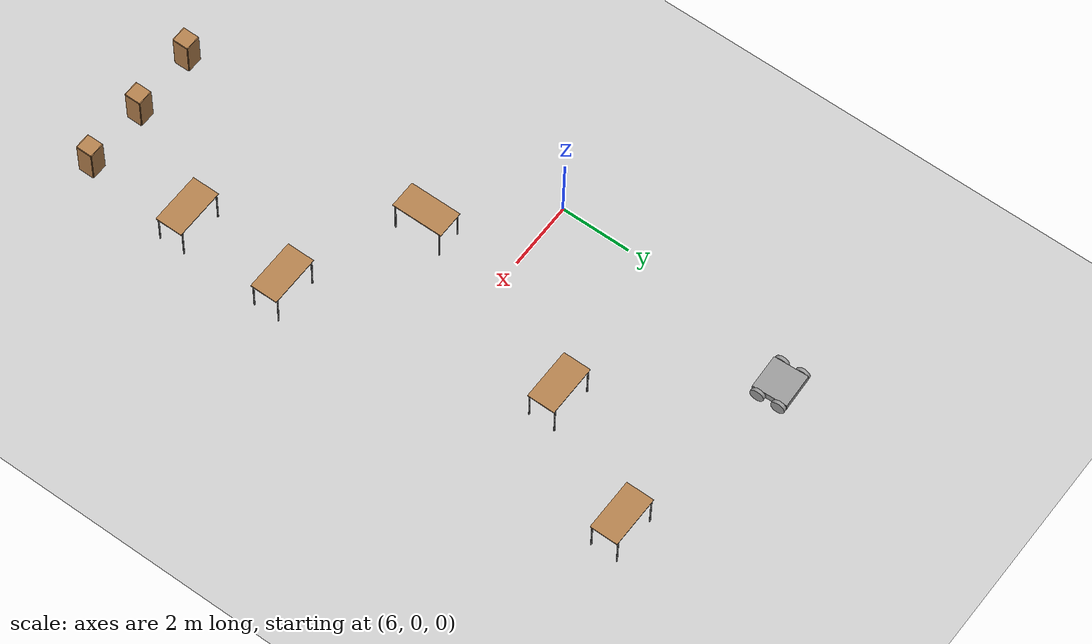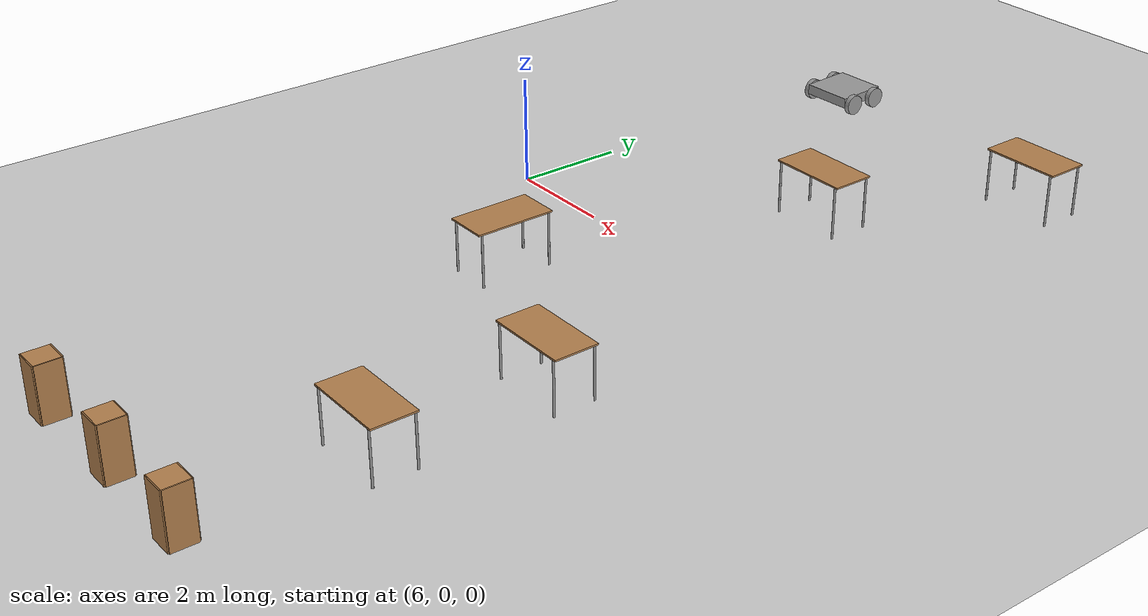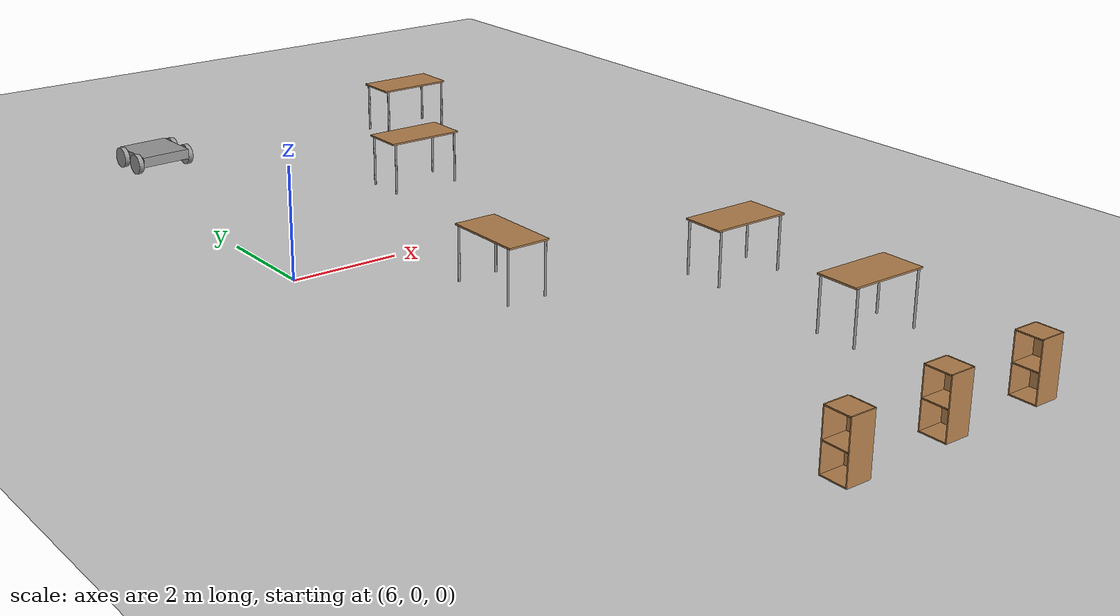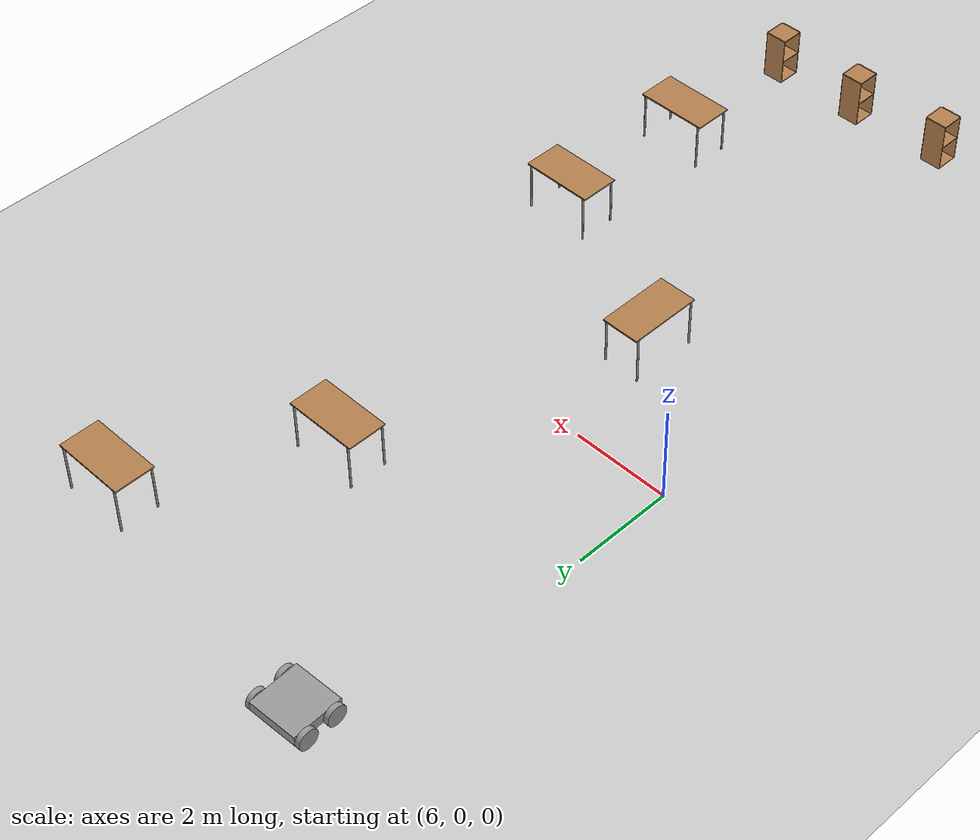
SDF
<sdf version="1.6">
 <world name="default">
  <model name="ground_plane">
   <static>1</static>
   <link name="link">
    <collision name="collision">
     <geometry><plane><normal>0 0 1</normal><size>100 100</size></plane></geometry>
     <surface>
      <contact><collide_bitmask>65535</collide_bitmask></contact>
      <friction><ode><mu>100</mu><mu2>50</mu2></ode></friction>
     </surface>
    </collision>
    <visual name="visual">
     <cast_shadows>0</cast_shadows>
     <geometry><plane><normal>0 0 1</normal><size>100 100</size></plane></geometry>
     <material>
      <script><uri>file://media/materials/scripts/gazebo.material</uri><name>Gazebo/Grey</name></script>
     </material>
    </visual>
   </link>
  </model>
  <model name="robot">
   <link name="link_0">
    <pose>0 0 0.048004 0 -0 0</pose>
    <inertial>
     <mass>1</mass>
     <inertia>
      <ixx>0.166667</ixx>
      <ixy>0</ixy>
      <ixz>0</ixz>
      <iyy>0.166667</iyy>
      <iyz>0</iyz>
      <izz>0.166667</izz>
     </inertia>
    </inertial>
    <visual name="visual">
     <geometry><box><size>1 1 0.2</size></box></geometry>
     <material>
      <lighting>1</lighting>
      <script><uri>file://media/materials/scripts/gazebo.material</uri><name>Gazebo/Grey</name></script>
      <shader type="pixel"><normal_map>__default__</normal_map></shader>
      <ambient>0.3 0.3 0.3 1</ambient>
      <diffuse>0.7 0.7 0.7 1</diffuse>
      <specular>0.01 0.01 0.01 1</specular>
      <emissive>0 0 0 1</emissive>
     </material>
    </visual>
    <collision name="collision">
     <geometry><box><size>1 1 0.2</size></box></geometry>
     <surface>
      <friction>
       <ode><mu>1</mu><mu2>1</mu2><fdir1>0 0 0</fdir1><slip1>0</slip1><slip2>0</slip2></ode>
       <torsional>
        <coefficient>1</coefficient>
        <patch_radius>0</patch_radius>
        <surface_radius>0</surface_radius>
        <use_patch_radius>1</use_patch_radius>
        <ode><slip>0</slip></ode>
       </torsional>
      </friction>
      <bounce><restitution_coefficient>0</restitution_coefficient><threshold>1e+06</threshold></bounce>
      <contact>
       <collide_without_contact>0</collide_without_contact>
       <collide_without_contact_bitmask>1</collide_without_contact_bitmask>
       <collide_bitmask>1</collide_bitmask>
       <ode>
        <soft_cfm>0</soft_cfm>
        <soft_erp>0.2</soft_erp>
        <kp>1e+13</kp>
        <kd>1</kd>
        <max_vel>0.01</max_vel>
        <min_depth>0</min_depth>
       </ode>
       <bullet>
        <split_impulse>1</split_impulse>
        <split_impulse_penetration_threshold>-0.01</split_impulse_penetration_threshold>
        <soft_cfm>0</soft_cfm>
        <soft_erp>0.2</soft_erp>
        <kp>1e+13</kp>
        <kd>1</kd>
       </bullet>
      </contact>
     </surface>
    </collision>
   </link>
   <link name="link_1_clone_1_clone">
    <pose>0.3 0.550019 -0.012001 1.5707 -0 0</pose>
    <inertial>
     <mass>1</mass>
     <inertia><ixx>0.145833</ixx><ixy>0</ixy><ixz>0</ixz><iyy>0.145833</iyy><iyz>0</iyz><izz>0.125</izz></inertia>
    </inertial>
    <visual name="visual">
     <geometry><cylinder><radius>0.2</radius><length>0.1</length></cylinder></geometry>
     <material>
      <lighting>1</lighting>
      <script><uri>file://media/materials/scripts/gazebo.material</uri><name>Gazebo/Grey</name></script>
      <shader type="pixel"><normal_map>__default__</normal_map></shader>
      <ambient>0.3 0.3 0.3 1</ambient>
      <diffuse>0.7 0.7 0.7 1</diffuse>
      <specular>0.01 0.01 0.01 1</specular>
      <emissive>0 0 0 1</emissive>
     </material>
    </visual>
    <collision name="collision">
     <geometry><cylinder><radius>0.2</radius><length>0.1</length></cylinder></geometry>
     <surface>
      <friction>
       <ode><mu>1</mu><mu2>1</mu2><fdir1>0 0 0</fdir1><slip1>0</slip1><slip2>0</slip2></ode>
       <torsional>
        <coefficient>1</coefficient>
        <patch_radius>0</patch_radius>
        <surface_radius>0</surface_radius>
        <use_patch_radius>1</use_patch_radius>
        <ode><slip>0</slip></ode>
       </torsional>
      </friction>
      <bounce><restitution_coefficient>0</restitution_coefficient><threshold>1e+06</threshold></bounce>
      <contact>
       <collide_without_contact>0</collide_without_contact>
       <collide_without_contact_bitmask>1</collide_without_contact_bitmask>
       <collide_bitmask>1</collide_bitmask>
       <ode>
        <soft_cfm>0</soft_cfm>
        <soft_erp>0.2</soft_erp>
        <kp>1e+13</kp>
        <kd>1</kd>
        <max_vel>0.01</max_vel>
        <min_depth>0</min_depth>
       </ode>
       <bullet>
        <split_impulse>1</split_impulse>
        <split_impulse_penetration_threshold>-0.01</split_impulse_penetration_threshold>
        <soft_cfm>0</soft_cfm>
        <soft_erp>0.2</soft_erp>
        <kp>1e+13</kp>
        <kd>1</kd>
       </bullet>
      </contact>
     </surface>
    </collision>
   </link>
   <link name="link_1_clone_1_clone_clone">
    <pose>-0.3 0.550019 -0.012001 1.5707 -0 0</pose>
    <inertial>
     <mass>1</mass>
     <inertia><ixx>0.145833</ixx><ixy>0</ixy><ixz>0</ixz><iyy>0.145833</iyy><iyz>0</iyz><izz>0.125</izz></inertia>
    </inertial>
    <visual name="visual">
     <geometry><cylinder><radius>0.2</radius><length>0.1</length></cylinder></geometry>
     <material>
      <lighting>1</lighting>
      <script><uri>file://media/materials/scripts/gazebo.material</uri><name>Gazebo/Grey</name></script>
      <shader type="pixel"><normal_map>__default__</normal_map></shader>
      <ambient>0.3 0.3 0.3 1</ambient>
      <diffuse>0.7 0.7 0.7 1</diffuse>
      <specular>0.01 0.01 0.01 1</specular>
      <emissive>0 0 0 1</emissive>
     </material>
    </visual>
    <collision name="collision">
     <geometry><cylinder><radius>0.2</radius><length>0.1</length></cylinder></geometry>
     <surface>
      <friction>
       <ode><mu>1</mu><mu2>1</mu2><fdir1>0 0 0</fdir1><slip1>0</slip1><slip2>0</slip2></ode>
       <torsional>
        <coefficient>1</coefficient>
        <patch_radius>0</patch_radius>
        <surface_radius>0</surface_radius>
        <use_patch_radius>1</use_patch_radius>
        <ode><slip>0</slip></ode>
       </torsional>
      </friction>
      <bounce><restitution_coefficient>0</restitution_coefficient><threshold>1e+06</threshold></bounce>
      <contact>
       <collide_without_contact>0</collide_without_contact>
       <collide_without_contact_bitmask>1</collide_without_contact_bitmask>
       <collide_bitmask>1</collide_bitmask>
       <ode>
        <soft_cfm>0</soft_cfm>
        <soft_erp>0.2</soft_erp>
        <kp>1e+13</kp>
        <kd>1</kd>
        <max_vel>0.01</max_vel>
        <min_depth>0</min_depth>
       </ode>
       <bullet>
        <split_impulse>1</split_impulse>
        <split_impulse_penetration_threshold>-0.01</split_impulse_penetration_threshold>
        <soft_cfm>0</soft_cfm>
        <soft_erp>0.2</soft_erp>
        <kp>1e+13</kp>
        <kd>1</kd>
       </bullet>
      </contact>
     </surface>
    </collision>
   </link>
   <link name="link_1_clone_1_clone_clone_clone">
    <pose>0.3 -0.550019 -0.012001 1.5707 -0 0</pose>
    <inertial>
     <mass>1</mass>
     <inertia><ixx>0.145833</ixx><ixy>0</ixy><ixz>0</ixz><iyy>0.145833</iyy><iyz>0</iyz><izz>0.125</izz></inertia>
    </inertial>
    <visual name="visual">
     <geometry><cylinder><radius>0.2</radius><length>0.1</length></cylinder></geometry>
     <material>
      <lighting>1</lighting>
      <script><uri>file://media/materials/scripts/gazebo.material</uri><name>Gazebo/Grey</name></script>
      <shader type="pixel"><normal_map>__default__</normal_map></shader>
      <ambient>0.3 0.3 0.3 1</ambient>
      <diffuse>0.7 0.7 0.7 1</diffuse>
      <specular>0.01 0.01 0.01 1</specular>
      <emissive>0 0 0 1</emissive>
     </material>
    </visual>
    <collision name="collision">
     <geometry><cylinder><radius>0.2</radius><length>0.1</length></cylinder></geometry>
     <surface>
      <friction>
       <ode><mu>1</mu><mu2>1</mu2><fdir1>0 0 0</fdir1><slip1>0</slip1><slip2>0</slip2></ode>
       <torsional>
        <coefficient>1</coefficient>
        <patch_radius>0</patch_radius>
        <surface_radius>0</surface_radius>
        <use_patch_radius>1</use_patch_radius>
        <ode><slip>0</slip></ode>
       </torsional>
      </friction>
      <bounce><restitution_coefficient>0</restitution_coefficient><threshold>1e+06</threshold></bounce>
      <contact>
       <collide_without_contact>0</collide_without_contact>
       <collide_without_contact_bitmask>1</collide_without_contact_bitmask>
       <collide_bitmask>1</collide_bitmask>
       <ode>
        <soft_cfm>0</soft_cfm>
        <soft_erp>0.2</soft_erp>
        <kp>1e+13</kp>
        <kd>1</kd>
        <max_vel>0.01</max_vel>
        <min_depth>0</min_depth>
       </ode>
       <bullet>
        <split_impulse>1</split_impulse>
        <split_impulse_penetration_threshold>-0.01</split_impulse_penetration_threshold>
        <soft_cfm>0</soft_cfm>
        <soft_erp>0.2</soft_erp>
        <kp>1e+13</kp>
        <kd>1</kd>
       </bullet>
      </contact>
     </surface>
    </collision>
   </link>
   <link name="link_1_clone_1_clone_clone_clone_0">
    <pose>-0.3 -0.550019 -0.012001 1.5707 -0 0</pose>
    <inertial>
     <mass>1</mass>
     <inertia><ixx>0.145833</ixx><ixy>0</ixy><ixz>0</ixz><iyy>0.145833</iyy><iyz>0</iyz><izz>0.125</izz></inertia>
    </inertial>
    <visual name="visual">
     <geometry><cylinder><radius>0.2</radius><length>0.1</length></cylinder></geometry>
     <material>
      <lighting>1</lighting>
      <script><uri>file://media/materials/scripts/gazebo.material</uri><name>Gazebo/Grey</name></script>
      <shader type="pixel"><normal_map>__default__</normal_map></shader>
      <ambient>0.3 0.3 0.3 1</ambient>
      <diffuse>0.7 0.7 0.7 1</diffuse>
      <specular>0.01 0.01 0.01 1</specular>
      <emissive>0 0 0 1</emissive>
     </material>
    </visual>
    <collision name="collision">
     <geometry><cylinder><radius>0.2</radius><length>0.1</length></cylinder></geometry>
     <surface>
      <friction>
       <ode><mu>1</mu><mu2>1</mu2><fdir1>0 0 0</fdir1><slip1>0</slip1><slip2>0</slip2></ode>
       <torsional>
        <coefficient>1</coefficient>
        <patch_radius>0</patch_radius>
        <surface_radius>0</surface_radius>
        <use_patch_radius>1</use_patch_radius>
        <ode><slip>0</slip></ode>
       </torsional>
      </friction>
      <bounce><restitution_coefficient>0</restitution_coefficient><threshold>1e+06</threshold></bounce>
      <contact>
       <collide_without_contact>0</collide_without_contact>
       <collide_without_contact_bitmask>1</collide_without_contact_bitmask>
       <collide_bitmask>1</collide_bitmask>
       <ode>
        <soft_cfm>0</soft_cfm>
        <soft_erp>0.2</soft_erp>
        <kp>1e+13</kp>
        <kd>1</kd>
        <max_vel>0.01</max_vel>
        <min_depth>0</min_depth>
       </ode>
       <bullet>
        <split_impulse>1</split_impulse>
        <split_impulse_penetration_threshold>-0.01</split_impulse_penetration_threshold>
        <soft_cfm>0</soft_cfm>
        <soft_erp>0.2</soft_erp>
        <kp>1e+13</kp>
        <kd>1</kd>
       </bullet>
      </contact>
     </surface>
    </collision>
   </link>
   <joint name="link_0_JOINT_4" type="revolute">
    <parent>link_0</parent>
    <child>link_1_clone_1_clone</child>
    <axis>
     <xyz>0 0 1</xyz>
     <use_parent_model_frame>0</use_parent_model_frame>
     <limit>
      <lower>-1.79769e+308</lower>
      <upper>1.79769e+308</upper>
      <effort>-1</effort>
      <velocity>-1</velocity>
     </limit>
     <dynamics>
      <spring_reference>0</spring_reference>
      <spring_stiffness>0</spring_stiffness>
      <damping>0</damping>
     </dynamics>
    </axis>
    <physics>
     <ode><limit><cfm>0</cfm><erp>0.2</erp></limit><suspension><cfm>0</cfm><erp>0.2</erp></suspension></ode>
    </physics>
   </joint>
   <joint name="link_0_JOINT_5" type="revolute">
    <parent>link_0</parent>
    <child>link_1_clone_1_clone_clone</child>
    <axis>
     <xyz>0 0 1</xyz>
     <use_parent_model_frame>0</use_parent_model_frame>
     <limit>
      <lower>-1.79769e+308</lower>
      <upper>1.79769e+308</upper>
      <effort>-1</effort>
      <velocity>-1</velocity>
     </limit>
     <dynamics>
      <spring_reference>0</spring_reference>
      <spring_stiffness>0</spring_stiffness>
      <damping>0</damping>
     </dynamics>
    </axis>
    <physics>
     <ode><limit><cfm>0</cfm><erp>0.2</erp></limit><suspension><cfm>0</cfm><erp>0.2</erp></suspension></ode>
    </physics>
   </joint>
   <joint name="link_0_JOINT_6" type="revolute">
    <parent>link_0</parent>
    <child>link_1_clone_1_clone_clone_clone_0</child>
    <axis>
     <xyz>0 0 1</xyz>
     <use_parent_model_frame>0</use_parent_model_frame>
     <limit>
      <lower>-1.79769e+308</lower>
      <upper>1.79769e+308</upper>
      <effort>-1</effort>
      <velocity>-1</velocity>
     </limit>
     <dynamics>
      <spring_reference>0</spring_reference>
      <spring_stiffness>0</spring_stiffness>
      <damping>0</damping>
     </dynamics>
    </axis>
    <physics>
     <ode><limit><cfm>0</cfm><erp>0.2</erp></limit><suspension><cfm>0</cfm><erp>0.2</erp></suspension></ode>
    </physics>
   </joint>
   <joint name="link_0_JOINT_7" type="revolute">
    <parent>link_0</parent>
    <child>link_1_clone_1_clone_clone_clone</child>
    <axis>
     <xyz>0 0 1</xyz>
     <use_parent_model_frame>0</use_parent_model_frame>
     <limit>
      <lower>-1.79769e+308</lower>
      <upper>1.79769e+308</upper>
      <effort>-1</effort>
      <velocity>-1</velocity>
     </limit>
     <dynamics>
      <spring_reference>0</spring_reference>
      <spring_stiffness>0</spring_stiffness>
      <damping>0</damping>
     </dynamics>
    </axis>
    <physics>
     <ode><limit><cfm>0</cfm><erp>0.2</erp></limit><suspension><cfm>0</cfm><erp>0.2</erp></suspension></ode>
    </physics>
   </joint>
   <static>0</static>
   <pose>6.96794 7.26627 0.212002 1e-06 -1e-05 1.61507</pose>
  </model>
  <model name="cabinet">
   <static>1</static>
   <link name="cabinet_bottom_plate">
    <inertial>
     <pose>0 0 -1 0 -0 0</pose>
     <inertia><ixx>2.05</ixx><ixy>0</ixy><ixz>0</ixz><iyy>2.05</iyy><iyz>0</iyz><izz>2.05</izz></inertia>
     <mass>25</mass>
    </inertial>
    <collision name="cabinet_bottom_plate_geom">
     <pose>0 0 0.01 0 -0 0</pose>
     <geometry><box><size>0.45 0.45 0.02</size></box></geometry>
    </collision>
    <visual name="cabinet_bottom_plate_geom_visual">
     <pose>0 0 0.01 0 -0 0</pose>
     <geometry><box><size>0.45 0.45 0.02</size></box></geometry>
     <material>
      <script><uri>file://media/materials/scripts/gazebo.material</uri><name>Gazebo/Wood</name></script>
     </material>
    </visual>
    <collision name="cabinet_bottom_plate_geom_cabinet_back_plate">
     <pose>0.235 0 0.51 0 -0 0</pose>
     <geometry><box><size>0.02 0.45 1.02</size></box></geometry>
    </collision>
    <visual name="cabinet_bottom_plate_geom_cabinet_back_plate_visual">
     <pose>0.235 0 0.51 0 -0 0</pose>
     <geometry><box><size>0.02 0.45 1.02</size></box></geometry>
     <material>
      <script><uri>file://media/materials/scripts/gazebo.material</uri><name>Gazebo/Wood</name></script>
     </material>
    </visual>
    <collision name="cabinet_bottom_plate_geom_cabinet_left_plate">
     <pose>0 0.235 0.51 0 -0 0</pose>
     <geometry><box><size>0.45 0.02 1.02</size></box></geometry>
    </collision>
    <visual name="cabinet_bottom_plate_geom_cabinet_left_plate_visual">
     <pose>0 0.235 0.51 0 -0 0</pose>
     <geometry><box><size>0.45 0.02 1.02</size></box></geometry>
     <material>
      <script><uri>file://media/materials/scripts/gazebo.material</uri><name>Gazebo/Wood</name></script>
     </material>
    </visual>
    <collision name="cabinet_bottom_plate_geom_cabinet_middle_plate">
     <pose>0 0 0.51 0 -0 0</pose>
     <geometry><box><size>0.45 0.45 0.02</size></box></geometry>
    </collision>
    <visual name="cabinet_bottom_plate_geom_cabinet_middle_plate_visual">
     <pose>0 0 0.51 0 -0 0</pose>
     <geometry><box><size>0.45 0.45 0.02</size></box></geometry>
     <material>
      <script><uri>file://media/materials/scripts/gazebo.material</uri><name>Gazebo/Wood</name></script>
     </material>
    </visual>
    <collision name="cabinet_bottom_plate_geom_cabinet_right_plate">
     <pose>0 -0.235 0.51 0 -0 0</pose>
     <geometry><box><size>0.45 0.02 1.02</size></box></geometry>
    </collision>
    <visual name="cabinet_bottom_plate_geom_cabinet_right_plate_visual">
     <pose>0 -0.235 0.51 0 -0 0</pose>
     <geometry><box><size>0.45 0.02 1.02</size></box></geometry>
     <material>
      <script><uri>file://media/materials/scripts/gazebo.material</uri><name>Gazebo/Wood</name></script>
     </material>
    </visual>
    <collision name="cabinet_bottom_plate_geom_cabinet_top_plate">
     <pose>0 0 1.01 0 -0 0</pose>
     <geometry><box><size>0.45 0.45 0.02</size></box></geometry>
    </collision>
    <visual name="cabinet_bottom_plate_geom_cabinet_top_plate_visual">
     <pose>0 0 1.01 0 -0 0</pose>
     <geometry><box><size>0.45 0.45 0.02</size></box></geometry>
     <material>
      <script><uri>file://media/materials/scripts/gazebo.material</uri><name>Gazebo/Wood</name></script>
     </material>
    </visual>
   </link>
   <pose>8.20144 -10.3116 0 0 -0 0</pose>
  </model>
  <model name="cabinet_0">
   <static>1</static>
   <link name="cabinet_bottom_plate">
    <inertial>
     <pose>0 0 -1 0 -0 0</pose>
     <inertia><ixx>2.05</ixx><ixy>0</ixy><ixz>0</ixz><iyy>2.05</iyy><iyz>0</iyz><izz>2.05</izz></inertia>
     <mass>25</mass>
    </inertial>
    <collision name="cabinet_bottom_plate_geom">
     <pose>0 0 0.01 0 -0 0</pose>
     <geometry><box><size>0.45 0.45 0.02</size></box></geometry>
    </collision>
    <visual name="cabinet_bottom_plate_geom_visual">
     <pose>0 0 0.01 0 -0 0</pose>
     <geometry><box><size>0.45 0.45 0.02</size></box></geometry>
     <material>
      <script><uri>file://media/materials/scripts/gazebo.material</uri><name>Gazebo/Wood</name></script>
     </material>
    </visual>
    <collision name="cabinet_bottom_plate_geom_cabinet_back_plate">
     <pose>0.235 0 0.51 0 -0 0</pose>
     <geometry><box><size>0.02 0.45 1.02</size></box></geometry>
    </collision>
    <visual name="cabinet_bottom_plate_geom_cabinet_back_plate_visual">
     <pose>0.235 0 0.51 0 -0 0</pose>
     <geometry><box><size>0.02 0.45 1.02</size></box></geometry>
     <material>
      <script><uri>file://media/materials/scripts/gazebo.material</uri><name>Gazebo/Wood</name></script>
     </material>
    </visual>
    <collision name="cabinet_bottom_plate_geom_cabinet_left_plate">
     <pose>0 0.235 0.51 0 -0 0</pose>
     <geometry><box><size>0.45 0.02 1.02</size></box></geometry>
    </collision>
    <visual name="cabinet_bottom_plate_geom_cabinet_left_plate_visual">
     <pose>0 0.235 0.51 0 -0 0</pose>
     <geometry><box><size>0.45 0.02 1.02</size></box></geometry>
     <material>
      <script><uri>file://media/materials/scripts/gazebo.material</uri><name>Gazebo/Wood</name></script>
     </material>
    </visual>
    <collision name="cabinet_bottom_plate_geom_cabinet_middle_plate">
     <pose>0 0 0.51 0 -0 0</pose>
     <geometry><box><size>0.45 0.45 0.02</size></box></geometry>
    </collision>
    <visual name="cabinet_bottom_plate_geom_cabinet_middle_plate_visual">
     <pose>0 0 0.51 0 -0 0</pose>
     <geometry><box><size>0.45 0.45 0.02</size></box></geometry>
     <material>
      <script><uri>file://media/materials/scripts/gazebo.material</uri><name>Gazebo/Wood</name></script>
     </material>
    </visual>
    <collision name="cabinet_bottom_plate_geom_cabinet_right_plate">
     <pose>0 -0.235 0.51 0 -0 0</pose>
     <geometry><box><size>0.45 0.02 1.02</size></box></geometry>
    </collision>
    <visual name="cabinet_bottom_plate_geom_cabinet_right_plate_visual">
     <pose>0 -0.235 0.51 0 -0 0</pose>
     <geometry><box><size>0.45 0.02 1.02</size></box></geometry>
     <material>
      <script><uri>file://media/materials/scripts/gazebo.material</uri><name>Gazebo/Wood</name></script>
     </material>
    </visual>
    <collision name="cabinet_bottom_plate_geom_cabinet_top_plate">
     <pose>0 0 1.01 0 -0 0</pose>
     <geometry><box><size>0.45 0.45 0.02</size></box></geometry>
    </collision>
    <visual name="cabinet_bottom_plate_geom_cabinet_top_plate_visual">
     <pose>0 0 1.01 0 -0 0</pose>
     <geometry><box><size>0.45 0.45 0.02</size></box></geometry>
     <material>
      <script><uri>file://media/materials/scripts/gazebo.material</uri><name>Gazebo/Wood</name></script>
     </material>
    </visual>
   </link>
   <pose>10.2141 -10.2419 0 0 -0 0</pose>
  </model>
  <model name="cabinet_1">
   <static>1</static>
   <link name="cabinet_bottom_plate">
    <inertial>
     <pose>0 0 -1 0 -0 0</pose>
     <inertia><ixx>2.05</ixx><ixy>0</ixy><ixz>0</ixz><iyy>2.05</iyy><iyz>0</iyz><izz>2.05</izz></inertia>
     <mass>25</mass>
    </inertial>
    <collision name="cabinet_bottom_plate_geom">
     <pose>0 0 0.01 0 -0 0</pose>
     <geometry><box><size>0.45 0.45 0.02</size></box></geometry>
    </collision>
    <visual name="cabinet_bottom_plate_geom_visual">
     <pose>0 0 0.01 0 -0 0</pose>
     <geometry><box><size>0.45 0.45 0.02</size></box></geometry>
     <material>
      <script><uri>file://media/materials/scripts/gazebo.material</uri><name>Gazebo/Wood</name></script>
     </material>
    </visual>
    <collision name="cabinet_bottom_plate_geom_cabinet_back_plate">
     <pose>0.235 0 0.51 0 -0 0</pose>
     <geometry><box><size>0.02 0.45 1.02</size></box></geometry>
    </collision>
    <visual name="cabinet_bottom_plate_geom_cabinet_back_plate_visual">
     <pose>0.235 0 0.51 0 -0 0</pose>
     <geometry><box><size>0.02 0.45 1.02</size></box></geometry>
     <material>
      <script><uri>file://media/materials/scripts/gazebo.material</uri><name>Gazebo/Wood</name></script>
     </material>
    </visual>
    <collision name="cabinet_bottom_plate_geom_cabinet_left_plate">
     <pose>0 0.235 0.51 0 -0 0</pose>
     <geometry><box><size>0.45 0.02 1.02</size></box></geometry>
    </collision>
    <visual name="cabinet_bottom_plate_geom_cabinet_left_plate_visual">
     <pose>0 0.235 0.51 0 -0 0</pose>
     <geometry><box><size>0.45 0.02 1.02</size></box></geometry>
     <material>
      <script><uri>file://media/materials/scripts/gazebo.material</uri><name>Gazebo/Wood</name></script>
     </material>
    </visual>
    <collision name="cabinet_bottom_plate_geom_cabinet_middle_plate">
     <pose>0 0 0.51 0 -0 0</pose>
     <geometry><box><size>0.45 0.45 0.02</size></box></geometry>
    </collision>
    <visual name="cabinet_bottom_plate_geom_cabinet_middle_plate_visual">
     <pose>0 0 0.51 0 -0 0</pose>
     <geometry><box><size>0.45 0.45 0.02</size></box></geometry>
     <material>
      <script><uri>file://media/materials/scripts/gazebo.material</uri><name>Gazebo/Wood</name></script>
     </material>
    </visual>
    <collision name="cabinet_bottom_plate_geom_cabinet_right_plate">
     <pose>0 -0.235 0.51 0 -0 0</pose>
     <geometry><box><size>0.45 0.02 1.02</size></box></geometry>
    </collision>
    <visual name="cabinet_bottom_plate_geom_cabinet_right_plate_visual">
     <pose>0 -0.235 0.51 0 -0 0</pose>
     <geometry><box><size>0.45 0.02 1.02</size></box></geometry>
     <material>
      <script><uri>file://media/materials/scripts/gazebo.material</uri><name>Gazebo/Wood</name></script>
     </material>
    </visual>
    <collision name="cabinet_bottom_plate_geom_cabinet_top_plate">
     <pose>0 0 1.01 0 -0 0</pose>
     <geometry><box><size>0.45 0.45 0.02</size></box></geometry>
    </collision>
    <visual name="cabinet_bottom_plate_geom_cabinet_top_plate_visual">
     <pose>0 0 1.01 0 -0 0</pose>
     <geometry><box><size>0.45 0.45 0.02</size></box></geometry>
     <material>
      <script><uri>file://media/materials/scripts/gazebo.material</uri><name>Gazebo/Wood</name></script>
     </material>
    </visual>
   </link>
   <pose>12.1593 -10.2286 0 0 -0 0</pose>
  </model>
  <model name="table">
   <static>1</static>
   <link name="link">
    <collision name="surface">
     <pose>0 0 1 0 -0 0</pose>
     <geometry><box><size>1.5 0.8 0.03</size></box></geometry>
     <surface><friction><ode><mu>0.6</mu><mu2>0.6</mu2></ode></friction></surface>
    </collision>
    <visual name="visual1">
     <pose>0 0 1 0 -0 0</pose>
     <geometry><box><size>1.5 0.8 0.03</size></box></geometry>
     <material>
      <script><uri>file://media/materials/scripts/gazebo.material</uri><name>Gazebo/Wood</name></script>
     </material>
    </visual>
    <collision name="front_left_leg">
     <pose>0.68 0.38 0.5 0 -0 0</pose>
     <geometry><cylinder><radius>0.02</radius><length>1</length></cylinder></geometry>
    </collision>
    <visual name="front_left_leg">
     <pose>0.68 0.38 0.5 0 -0 0</pose>
     <geometry><cylinder><radius>0.02</radius><length>1</length></cylinder></geometry>
     <material>
      <script><uri>file://media/materials/scripts/gazebo.material</uri><name>Gazebo/Grey</name></script>
     </material>
    </visual>
    <collision name="front_right_leg">
     <pose>0.68 -0.38 0.5 0 -0 0</pose>
     <geometry><cylinder><radius>0.02</radius><length>1</length></cylinder></geometry>
    </collision>
    <visual name="front_right_leg">
     <pose>0.68 -0.38 0.5 0 -0 0</pose>
     <geometry><cylinder><radius>0.02</radius><length>1</length></cylinder></geometry>
     <material>
      <script><uri>file://media/materials/scripts/gazebo.material</uri><name>Gazebo/Grey</name></script>
     </material>
    </visual>
    <collision name="back_right_leg">
     <pose>-0.68 -0.38 0.5 0 -0 0</pose>
     <geometry><cylinder><radius>0.02</radius><length>1</length></cylinder></geometry>
    </collision>
    <visual name="back_right_leg">
     <pose>-0.68 -0.38 0.5 0 -0 0</pose>
     <geometry><cylinder><radius>0.02</radius><length>1</length></cylinder></geometry>
     <material>
      <script><uri>file://media/materials/scripts/gazebo.material</uri><name>Gazebo/Grey</name></script>
     </material>
    </visual>
    <collision name="back_left_leg">
     <pose>-0.68 0.38 0.5 0 -0 0</pose>
     <geometry><cylinder><radius>0.02</radius><length>1</length></cylinder></geometry>
    </collision>
    <visual name="back_left_leg">
     <pose>-0.68 0.38 0.5 0 -0 0</pose>
     <geometry><cylinder><radius>0.02</radius><length>1</length></cylinder></geometry>
     <material>
      <script><uri>file://media/materials/scripts/gazebo.material</uri><name>Gazebo/Grey</name></script>
     </material>
    </visual>
   </link>
   <pose>12.0746 -7.16891 0 0 -0 0</pose>
  </model>
  <model name="table_0">
   <static>1</static>
   <link name="link">
    <collision name="surface">
     <pose>0 0 1 0 -0 0</pose>
     <geometry><box><size>1.5 0.8 0.03</size></box></geometry>
     <surface><friction><ode><mu>0.6</mu><mu2>0.6</mu2></ode></friction></surface>
    </collision>
    <visual name="visual1">
     <pose>0 0 1 0 -0 0</pose>
     <geometry><box><size>1.5 0.8 0.03</size></box></geometry>
     <material>
      <script><uri>file://media/materials/scripts/gazebo.material</uri><name>Gazebo/Wood</name></script>
     </material>
    </visual>
    <collision name="front_left_leg">
     <pose>0.68 0.38 0.5 0 -0 0</pose>
     <geometry><cylinder><radius>0.02</radius><length>1</length></cylinder></geometry>
    </collision>
    <visual name="front_left_leg">
     <pose>0.68 0.38 0.5 0 -0 0</pose>
     <geometry><cylinder><radius>0.02</radius><length>1</length></cylinder></geometry>
     <material>
      <script><uri>file://media/materials/scripts/gazebo.material</uri><name>Gazebo/Grey</name></script>
     </material>
    </visual>
    <collision name="front_right_leg">
     <pose>0.68 -0.38 0.5 0 -0 0</pose>
     <geometry><cylinder><radius>0.02</radius><length>1</length></cylinder></geometry>
    </collision>
    <visual name="front_right_leg">
     <pose>0.68 -0.38 0.5 0 -0 0</pose>
     <geometry><cylinder><radius>0.02</radius><length>1</length></cylinder></geometry>
     <material>
      <script><uri>file://media/materials/scripts/gazebo.material</uri><name>Gazebo/Grey</name></script>
     </material>
    </visual>
    <collision name="back_right_leg">
     <pose>-0.68 -0.38 0.5 0 -0 0</pose>
     <geometry><cylinder><radius>0.02</radius><length>1</length></cylinder></geometry>
    </collision>
    <visual name="back_right_leg">
     <pose>-0.68 -0.38 0.5 0 -0 0</pose>
     <geometry><cylinder><radius>0.02</radius><length>1</length></cylinder></geometry>
     <material>
      <script><uri>file://media/materials/scripts/gazebo.material</uri><name>Gazebo/Grey</name></script>
     </material>
    </visual>
    <collision name="back_left_leg">
     <pose>-0.68 0.38 0.5 0 -0 0</pose>
     <geometry><cylinder><radius>0.02</radius><length>1</length></cylinder></geometry>
    </collision>
    <visual name="back_left_leg">
     <pose>-0.68 0.38 0.5 0 -0 0</pose>
     <geometry><cylinder><radius>0.02</radius><length>1</length></cylinder></geometry>
     <material>
      <script><uri>file://media/materials/scripts/gazebo.material</uri><name>Gazebo/Grey</name></script>
     </material>
    </visual>
   </link>
   <pose>12.1717 -4.09965 0 0 -0 0</pose>
  </model>
  <model name="table_1">
   <static>1</static>
   <link name="link">
    <collision name="surface">
     <pose>0 0 1 0 -0 0</pose>
     <geometry><box><size>1.5 0.8 0.03</size></box></geometry>
     <surface><friction><ode><mu>0.6</mu><mu2>0.6</mu2></ode></friction></surface>
    </collision>
    <visual name="visual1">
     <pose>0 0 1 0 -0 0</pose>
     <geometry><box><size>1.5 0.8 0.03</size></box></geometry>
     <material>
      <script><uri>file://media/materials/scripts/gazebo.material</uri><name>Gazebo/Wood</name></script>
     </material>
    </visual>
    <collision name="front_left_leg">
     <pose>0.68 0.38 0.5 0 -0 0</pose>
     <geometry><cylinder><radius>0.02</radius><length>1</length></cylinder></geometry>
    </collision>
    <visual name="front_left_leg">
     <pose>0.68 0.38 0.5 0 -0 0</pose>
     <geometry><cylinder><radius>0.02</radius><length>1</length></cylinder></geometry>
     <material>
      <script><uri>file://media/materials/scripts/gazebo.material</uri><name>Gazebo/Grey</name></script>
     </material>
    </visual>
    <collision name="front_right_leg">
     <pose>0.68 -0.38 0.5 0 -0 0</pose>
     <geometry><cylinder><radius>0.02</radius><length>1</length></cylinder></geometry>
    </collision>
    <visual name="front_right_leg">
     <pose>0.68 -0.38 0.5 0 -0 0</pose>
     <geometry><cylinder><radius>0.02</radius><length>1</length></cylinder></geometry>
     <material>
      <script><uri>file://media/materials/scripts/gazebo.material</uri><name>Gazebo/Grey</name></script>
     </material>
    </visual>
    <collision name="back_right_leg">
     <pose>-0.68 -0.38 0.5 0 -0 0</pose>
     <geometry><cylinder><radius>0.02</radius><length>1</length></cylinder></geometry>
    </collision>
    <visual name="back_right_leg">
     <pose>-0.68 -0.38 0.5 0 -0 0</pose>
     <geometry><cylinder><radius>0.02</radius><length>1</length></cylinder></geometry>
     <material>
      <script><uri>file://media/materials/scripts/gazebo.material</uri><name>Gazebo/Grey</name></script>
     </material>
    </visual>
    <collision name="back_left_leg">
     <pose>-0.68 0.38 0.5 0 -0 0</pose>
     <geometry><cylinder><radius>0.02</radius><length>1</length></cylinder></geometry>
    </collision>
    <visual name="back_left_leg">
     <pose>-0.68 0.38 0.5 0 -0 0</pose>
     <geometry><cylinder><radius>0.02</radius><length>1</length></cylinder></geometry>
     <material>
      <script><uri>file://media/materials/scripts/gazebo.material</uri><name>Gazebo/Grey</name></script>
     </material>
    </visual>
   </link>
   <pose>8.57524 -2.36875 0 0 -0 1.57241</pose>
  </model>
  <model name="table_5">
   <static>1</static>
   <link name="link">
    <collision name="surface">
     <pose>0 0 1 0 -0 0</pose>
     <geometry><box><size>1.5 0.8 0.03</size></box></geometry>
     <surface><friction><ode><mu>0.6</mu><mu2>0.6</mu2></ode></friction></surface>
    </collision>
    <visual name="visual1">
     <pose>0 0 1 0 -0 0</pose>
     <geometry><box><size>1.5 0.8 0.03</size></box></geometry>
     <material>
      <script><uri>file://media/materials/scripts/gazebo.material</uri><name>Gazebo/Wood</name></script>
     </material>
    </visual>
    <collision name="front_left_leg">
     <pose>0.68 0.38 0.5 0 -0 0</pose>
     <geometry><cylinder><radius>0.02</radius><length>1</length></cylinder></geometry>
    </collision>
    <visual name="front_left_leg">
     <pose>0.68 0.38 0.5 0 -0 0</pose>
     <geometry><cylinder><radius>0.02</radius><length>1</length></cylinder></geometry>
     <material>
      <script><uri>file://media/materials/scripts/gazebo.material</uri><name>Gazebo/Grey</name></script>
     </material>
    </visual>
    <collision name="front_right_leg">
     <pose>0.68 -0.38 0.5 0 -0 0</pose>
     <geometry><cylinder><radius>0.02</radius><length>1</length></cylinder></geometry>
    </collision>
    <visual name="front_right_leg">
     <pose>0.68 -0.38 0.5 0 -0 0</pose>
     <geometry><cylinder><radius>0.02</radius><length>1</length></cylinder></geometry>
     <material>
      <script><uri>file://media/materials/scripts/gazebo.material</uri><name>Gazebo/Grey</name></script>
     </material>
    </visual>
    <collision name="back_right_leg">
     <pose>-0.68 -0.38 0.5 0 -0 0</pose>
     <geometry><cylinder><radius>0.02</radius><length>1</length></cylinder></geometry>
    </collision>
    <visual name="back_right_leg">
     <pose>-0.68 -0.38 0.5 0 -0 0</pose>
     <geometry><cylinder><radius>0.02</radius><length>1</length></cylinder></geometry>
     <material>
      <script><uri>file://media/materials/scripts/gazebo.material</uri><name>Gazebo/Grey</name></script>
     </material>
    </visual>
    <collision name="back_left_leg">
     <pose>-0.68 0.38 0.5 0 -0 0</pose>
     <geometry><cylinder><radius>0.02</radius><length>1</length></cylinder></geometry>
    </collision>
    <visual name="back_left_leg">
     <pose>-0.68 0.38 0.5 0 -0 0</pose>
     <geometry><cylinder><radius>0.02</radius><length>1</length></cylinder></geometry>
     <material>
      <script><uri>file://media/materials/scripts/gazebo.material</uri><name>Gazebo/Grey</name></script>
     </material>
    </visual>
   </link>
   <pose>10.5599 3.16958 0 0 -0 0</pose>
  </model>
  <model name="table_6">
   <static>1</static>
   <link name="link">
    <collision name="surface">
     <pose>0 0 1 0 -0 0</pose>
     <geometry><box><size>1.5 0.8 0.03</size></box></geometry>
     <surface><friction><ode><mu>0.6</mu><mu2>0.6</mu2></ode></friction></surface>
    </collision>
    <visual name="visual1">
     <pose>0 0 1 0 -0 0</pose>
     <geometry><box><size>1.5 0.8 0.03</size></box></geometry>
     <material>
      <script><uri>file://media/materials/scripts/gazebo.material</uri><name>Gazebo/Wood</name></script>
     </material>
    </visual>
    <collision name="front_left_leg">
     <pose>0.68 0.38 0.5 0 -0 0</pose>
     <geometry><cylinder><radius>0.02</radius><length>1</length></cylinder></geometry>
    </collision>
    <visual name="front_left_leg">
     <pose>0.68 0.38 0.5 0 -0 0</pose>
     <geometry><cylinder><radius>0.02</radius><length>1</length></cylinder></geometry>
     <material>
      <script><uri>file://media/materials/scripts/gazebo.material</uri><name>Gazebo/Grey</name></script>
     </material>
    </visual>
    <collision name="front_right_leg">
     <pose>0.68 -0.38 0.5 0 -0 0</pose>
     <geometry><cylinder><radius>0.02</radius><length>1</length></cylinder></geometry>
    </collision>
    <visual name="front_right_leg">
     <pose>0.68 -0.38 0.5 0 -0 0</pose>
     <geometry><cylinder><radius>0.02</radius><length>1</length></cylinder></geometry>
     <material>
      <script><uri>file://media/materials/scripts/gazebo.material</uri><name>Gazebo/Grey</name></script>
     </material>
    </visual>
    <collision name="back_right_leg">
     <pose>-0.68 -0.38 0.5 0 -0 0</pose>
     <geometry><cylinder><radius>0.02</radius><length>1</length></cylinder></geometry>
    </collision>
    <visual name="back_right_leg">
     <pose>-0.68 -0.38 0.5 0 -0 0</pose>
     <geometry><cylinder><radius>0.02</radius><length>1</length></cylinder></geometry>
     <material>
      <script><uri>file://media/materials/scripts/gazebo.material</uri><name>Gazebo/Grey</name></script>
     </material>
    </visual>
    <collision name="back_left_leg">
     <pose>-0.68 0.38 0.5 0 -0 0</pose>
     <geometry><cylinder><radius>0.02</radius><length>1</length></cylinder></geometry>
    </collision>
    <visual name="back_left_leg">
     <pose>-0.68 0.38 0.5 0 -0 0</pose>
     <geometry><cylinder><radius>0.02</radius><length>1</length></cylinder></geometry>
     <material>
      <script><uri>file://media/materials/scripts/gazebo.material</uri><name>Gazebo/Grey</name></script>
     </material>
    </visual>
   </link>
   <pose>12.5377 6.48241 0 0 -0 0</pose>
  </model>
 </world>
</sdf>
